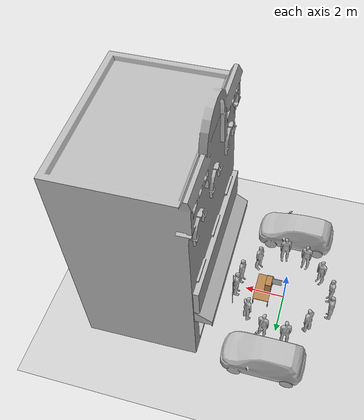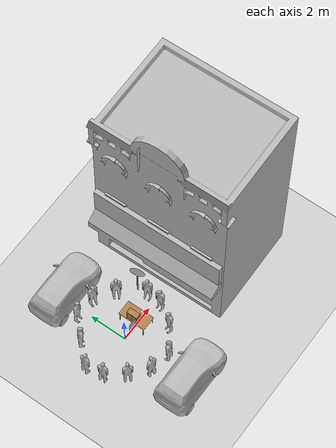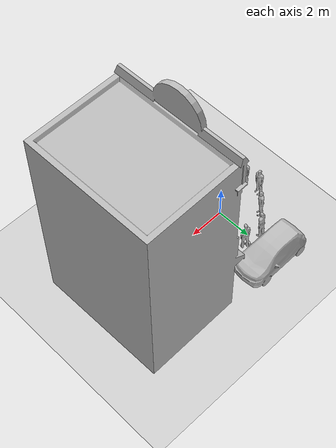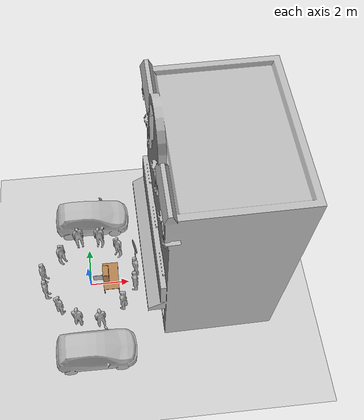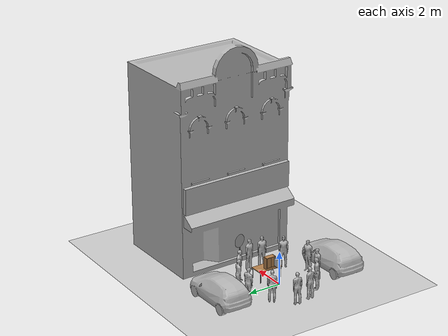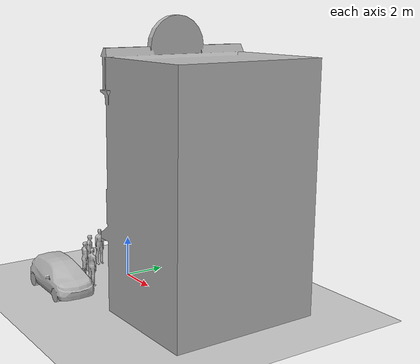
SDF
<sdf version="1.6">
 <world name="default">
  <light name="sun" type="directional">
   <pose>0 0 10 0 -0 0</pose>
   <diffuse>0.8 0.8 0.8 1</diffuse>
   <specular>0.2 0.2 0.2 1</specular>
   <attenuation>
    <range>1000</range>
    <constant>0.9</constant>
    <linear>0.01</linear>
    <quadratic>0.001</quadratic>
   </attenuation>
   <direction>-0.5 0.1 -0.9</direction>
  </light>
  <physics name="dart_2ms" default="1" type="dart">
   <max_step_size>0.002</max_step_size>
   <real_time_factor>1</real_time_factor>
   <real_time_update_rate>500</real_time_update_rate>
  </physics>
  <model name="ground_plane">
   <static>1</static>
   <link name="link">
    <collision name="collision">
     <geometry><plane><normal>0 0 1</normal><size>100 100</size></plane></geometry>
     <surface><friction><ode><mu>100</mu><mu2>50</mu2></ode></friction></surface>
    </collision>
    <visual name="visual">
     <cast_shadows>0</cast_shadows>
     <geometry><plane><normal>0 0 1</normal><size>100 100</size></plane></geometry>
     <material>
      <script><uri>file://media/materials/scripts/gazebo.material</uri><name>Gazebo/Grey</name></script>
     </material>
    </visual>
   </link>
  </model>
  <scene><ambient>0.4 0.4 0.4 1</ambient><background>0.7 0.7 0.7 1</background><shadows>1</shadows></scene>
  <audio><device>default</device></audio>
  <spherical_coordinates>
   <surface_model>EARTH_WGS84</surface_model>
   <latitude_deg>0</latitude_deg>
   <longitude_deg>0</longitude_deg>
   <elevation>0</elevation>
   <heading_deg>0</heading_deg>
  </spherical_coordinates>
  <model name="table">
   <static>1</static>
   <link name="link">
    <collision name="surface">
     <pose>0 0 1 0 -0 0</pose>
     <geometry><box><size>1.5 0.8 0.03</size></box></geometry>
     <surface><friction><ode><mu>0.6</mu><mu2>0.6</mu2></ode></friction></surface>
    </collision>
    <visual name="visual1">
     <pose>0 0 1 0 -0 0</pose>
     <geometry><box><size>1.5 0.8 0.03</size></box></geometry>
     <material>
      <script><uri>file://media/materials/scripts/gazebo.material</uri><name>Gazebo/Wood</name></script>
     </material>
    </visual>
    <collision name="front_left_leg">
     <pose>0.68 0.38 0.5 0 -0 0</pose>
     <geometry><cylinder><radius>0.02</radius><length>1</length></cylinder></geometry>
    </collision>
    <visual name="front_left_leg">
     <pose>0.68 0.38 0.5 0 -0 0</pose>
     <geometry><cylinder><radius>0.02</radius><length>1</length></cylinder></geometry>
     <material>
      <script><uri>file://media/materials/scripts/gazebo.material</uri><name>Gazebo/Grey</name></script>
     </material>
    </visual>
    <collision name="front_right_leg">
     <pose>0.68 -0.38 0.5 0 -0 0</pose>
     <geometry><cylinder><radius>0.02</radius><length>1</length></cylinder></geometry>
    </collision>
    <visual name="front_right_leg">
     <pose>0.68 -0.38 0.5 0 -0 0</pose>
     <geometry><cylinder><radius>0.02</radius><length>1</length></cylinder></geometry>
     <material>
      <script><uri>file://media/materials/scripts/gazebo.material</uri><name>Gazebo/Grey</name></script>
     </material>
    </visual>
    <collision name="back_right_leg">
     <pose>-0.68 -0.38 0.5 0 -0 0</pose>
     <geometry><cylinder><radius>0.02</radius><length>1</length></cylinder></geometry>
    </collision>
    <visual name="back_right_leg">
     <pose>-0.68 -0.38 0.5 0 -0 0</pose>
     <geometry><cylinder><radius>0.02</radius><length>1</length></cylinder></geometry>
     <material>
      <script><uri>file://media/materials/scripts/gazebo.material</uri><name>Gazebo/Grey</name></script>
     </material>
    </visual>
    <collision name="back_left_leg">
     <pose>-0.68 0.38 0.5 0 -0 0</pose>
     <geometry><cylinder><radius>0.02</radius><length>1</length></cylinder></geometry>
    </collision>
    <visual name="back_left_leg">
     <pose>-0.68 0.38 0.5 0 -0 0</pose>
     <geometry><cylinder><radius>0.02</radius><length>1</length></cylinder></geometry>
     <material>
      <script><uri>file://media/materials/scripts/gazebo.material</uri><name>Gazebo/Grey</name></script>
     </material>
    </visual>
   </link>
   <pose>1.08173 0.108165 -0.348654 0 -0 1.5708</pose>
  </model>
  <model name="cabinet_door">
   <link name="cabinet">
    <pose>0 0 0.35 0 -0 0</pose>
    <inertial>
     <mass>16</mass>
     <inertia><ixx>1.59</ixx><ixy>0</ixy><ixz>0</ixz><iyy>1.12</iyy><iyz>0</iyz><izz>0.91</izz></inertia>
    </inertial>
    <collision name="back">
     <pose>-0.14 0 0.035 0 -0 0</pose>
     <geometry><box><size>0.015 0.585 0.6</size></box></geometry>
    </collision>
    <visual name="visual1">
     <pose>-0.14 0 0.035 0 -0 0</pose>
     <geometry><box><size>0.015 0.585 0.6</size></box></geometry>
     <material>
      <script><uri>file://media/materials/scripts/gazebo.material</uri><name>Gazebo/Wood</name></script>
     </material>
    </visual>
    <collision name="left_side">
     <pose>0 -0.2925 0 0 -0 0</pose>
     <geometry><box><size>0.3 0.015 0.7</size></box></geometry>
    </collision>
    <visual name="visual2">
     <pose>0 -0.2925 0 0 -0 0</pose>
     <geometry><box><size>0.3 0.015 0.7</size></box></geometry>
     <material>
      <script><uri>file://media/materials/scripts/gazebo.material</uri><name>Gazebo/Wood</name></script>
     </material>
    </visual>
    <collision name="right_side">
     <pose>0 0.2925 0 0 -0 0</pose>
     <geometry><box><size>0.3 0.015 0.7</size></box></geometry>
    </collision>
    <visual name="visual3">
     <pose>0 0.2925 0 0 -0 0</pose>
     <geometry><box><size>0.3 0.015 0.7</size></box></geometry>
     <material>
      <script><uri>file://media/materials/scripts/gazebo.material</uri><name>Gazebo/Wood</name></script>
     </material>
    </visual>
    <collision name="bottom">
     <pose>-0.002 0 -0.2525 0 -0 0</pose>
     <geometry><box><size>0.26 0.57 0.015</size></box></geometry>
    </collision>
    <visual name="visual4">
     <pose>-0.002 0 -0.2525 0 -0 0</pose>
     <geometry><box><size>0.26 0.57 0.015</size></box></geometry>
     <material>
      <script><uri>file://media/materials/scripts/gazebo.material</uri><name>Gazebo/Wood</name></script>
     </material>
    </visual>
    <collision name="top">
     <pose>0 0 0.3425 0 -0 0</pose>
     <geometry><box><size>0.3 0.57 0.015</size></box></geometry>
    </collision>
    <visual name="visual5">
     <pose>0 0 0.3425 0 -0 0</pose>
     <geometry><box><size>0.3 0.57 0.015</size></box></geometry>
     <material>
      <script><uri>file://media/materials/scripts/gazebo.material</uri><name>Gazebo/Wood</name></script>
     </material>
    </visual>
    <collision name="middle_shelf">
     <pose>-0.002 0 0.0475 0 -0 0</pose>
     <geometry><box><size>0.26 0.57 0.015</size></box></geometry>
    </collision>
    <visual name="visual6">
     <pose>-0.002 0 0.0475 0 -0 0</pose>
     <geometry><box><size>0.26 0.57 0.015</size></box></geometry>
     <material>
      <script><uri>file://media/materials/scripts/gazebo.material</uri><name>Gazebo/Wood</name></script>
     </material>
    </visual>
    <collision name="low_front">
     <pose>0.115 0 -0.3025 0 -0 0</pose>
     <geometry><box><size>0.015 0.57 0.09</size></box></geometry>
    </collision>
    <visual name="visual7">
     <pose>0.115 0 -0.3025 0 -0 0</pose>
     <geometry><box><size>0.015 0.57 0.09</size></box></geometry>
     <material>
      <script><uri>file://media/materials/scripts/gazebo.material</uri><name>Gazebo/Wood</name></script>
     </material>
    </visual>
   </link>
   <link name="right_door">
    <pose>0.135 0.2835 0.3875 0 -0 0</pose>
    <inertial>
     <mass>1.7</mass>
     <pose>0 -0.141 0 0 -0 0</pose>
     <inertia><ixx>0.06</ixx><ixy>0</ixy><ixz>0</ixz><iyy>0.49</iyy><iyz>0</iyz><izz>0.111</izz></inertia>
    </inertial>
    <collision name="right_face">
     <pose>0 -0.141 0 0 -0 0</pose>
     <geometry><box><size>0.015 0.282 0.595</size></box></geometry>
    </collision>
    <visual name="visual8">
     <pose>0 -0.141 0 0 -0 0</pose>
     <geometry><box><size>0.015 0.282 0.595</size></box></geometry>
     <material>
      <script><uri>file://media/materials/scripts/gazebo.material</uri><name>Gazebo/Wood</name></script>
     </material>
    </visual>
    <collision name="right_handle">
     <pose>0.04304 -0.2555 0 0 -0 0</pose>
     <geometry><box><size>0.005 0.005 0.136</size></box></geometry>
    </collision>
    <visual name="visual9">
     <pose>0.04304 -0.2555 0 0 -0 0</pose>
     <geometry><box><size>0.005 0.005 0.136</size></box></geometry>
     <material>
      <script><uri>file://media/materials/scripts/gazebo.material</uri><name>Gazebo/Wood</name></script>
     </material>
    </visual>
    <collision name="right_handle_up">
     <pose>0.02475 -0.2555 0.0656 0 -0 0</pose>
     <geometry><box><size>0.04 0.005 0.005</size></box></geometry>
    </collision>
    <visual name="visual10">
     <pose>0.02475 -0.2555 0.0656 0 -0 0</pose>
     <geometry><box><size>0.04 0.005 0.005</size></box></geometry>
     <material>
      <script><uri>file://media/materials/scripts/gazebo.material</uri><name>Gazebo/Wood</name></script>
     </material>
    </visual>
    <collision name="right_handle_bo">
     <pose>0.02475 -0.2555 -0.06542 0 -0 0</pose>
     <geometry><box><size>0.04 0.005 0.005</size></box></geometry>
    </collision>
    <visual name="visual11">
     <pose>0.02475 -0.2555 -0.06542 0 -0 0</pose>
     <geometry><box><size>0.04 0.005 0.005</size></box></geometry>
     <material>
      <script><uri>file://media/materials/scripts/gazebo.material</uri><name>Gazebo/Wood</name></script>
     </material>
    </visual>
    <visual name="visual_marker_0">
     <pose>0.007 -0.07 0 1.57075 0 1.57075</pose>
     <geometry><mesh><uri>model://marker_0/meshes/marker_0.dae</uri></mesh></geometry>
    </visual>
   </link>
   <joint name="right_joint" type="revolute">
    <parent>cabinet</parent>
    <child>right_door</child>
    <axis>
     <xyz>0 0 1</xyz>
     <limit><lower>-0.001</lower><upper>1.58</upper></limit>
     <dynamics>
      <damping>0.5</damping>
      <friction>0.1</friction>
      <spring_reference>0</spring_reference>
      <spring_stiffness>0</spring_stiffness>
     </dynamics>
     <use_parent_model_frame>1</use_parent_model_frame>
    </axis>
   </joint>
   <link name="left_door">
    <pose>0.135 -0.2835 0.3875 0 -0 0</pose>
    <inertial>
     <mass>1</mass>
     <pose>0 0.141 0 0 -0 0</pose>
     <inertia><ixx>0.06</ixx><ixy>0</ixy><ixz>0</ixz><iyy>0.49</iyy><iyz>0</iyz><izz>0.111</izz></inertia>
    </inertial>
    <collision name="left_face">
     <pose>0 0.141 0 0 -0 0</pose>
     <geometry><box><size>0.015 0.282 0.595</size></box></geometry>
    </collision>
    <visual name="visual12">
     <pose>0 0.141 0 0 -0 0</pose>
     <geometry><box><size>0.015 0.282 0.595</size></box></geometry>
     <material>
      <script><uri>file://media/materials/scripts/gazebo.material</uri><name>Gazebo/Wood</name></script>
     </material>
    </visual>
    <collision name="left_handle">
     <pose>0.04304 0.2555 0 0 -0 0</pose>
     <geometry><box><size>0.005 0.005 0.136</size></box></geometry>
    </collision>
    <visual name="visual13">
     <pose>0.04304 0.2555 0 0 -0 0</pose>
     <geometry><box><size>0.005 0.005 0.136</size></box></geometry>
     <material>
      <script><uri>file://media/materials/scripts/gazebo.material</uri><name>Gazebo/Wood</name></script>
     </material>
    </visual>
    <collision name="left_handle_up">
     <pose>0.02475 0.2555 0.0656 0 -0 0</pose>
     <geometry><box><size>0.04 0.005 0.005</size></box></geometry>
    </collision>
    <visual name="visual14">
     <pose>0.02475 0.2555 0.0656 0 -0 0</pose>
     <geometry><box><size>0.04 0.005 0.005</size></box></geometry>
     <material>
      <script><uri>file://media/materials/scripts/gazebo.material</uri><name>Gazebo/Wood</name></script>
     </material>
    </visual>
    <collision name="left_handle_bo">
     <pose>0.02475 0.2555 -0.06542 0 -0 0</pose>
     <geometry><box><size>0.04 0.005 0.005</size></box></geometry>
    </collision>
    <visual name="visual15">
     <pose>0.02475 0.2555 -0.06542 0 -0 0</pose>
     <geometry><box><size>0.04 0.005 0.005</size></box></geometry>
     <material>
      <script><uri>file://media/materials/scripts/gazebo.material</uri><name>Gazebo/Wood</name></script>
     </material>
    </visual>
   </link>
   <joint name="left_joint" type="revolute">
    <parent>cabinet</parent>
    <child>left_door</child>
    <axis>
     <xyz>0 0 1</xyz>
     <limit><lower>-1.58</lower><upper>0.001</upper></limit>
     <dynamics>
      <damping>0.5</damping>
      <friction>0.1</friction>
      <spring_reference>0</spring_reference>
      <spring_stiffness>0</spring_stiffness>
     </dynamics>
     <use_parent_model_frame>1</use_parent_model_frame>
    </axis>
   </joint>
   <pose>0.843653 0.084566 0.700651 0 -0 3.14014</pose>
  </model>
  <gravity>0 0 -9.8</gravity>
  <magnetic_field>6e-06 2.3e-05 -4.2e-05</magnetic_field>
  <atmosphere type="adiabatic"/>
  <model name="hatchback">
   <static>1</static>
   <link name="link">
    <collision name="collision">
     <pose>0 0 0 0 -0 1.5708</pose>
     <geometry>
      <mesh><scale>0.0254 0.0254 0.0254</scale><uri>model://hatchback/meshes/hatchback.obj</uri></mesh>
     </geometry>
    </collision>
    <visual name="visual">
     <pose>0 0 0 0 -0 1.5708</pose>
     <geometry>
      <mesh><scale>0.0254 0.0254 0.0254</scale><uri>model://hatchback/meshes/hatchback.obj</uri></mesh>
     </geometry>
    </visual>
   </link>
   <pose>-0.219734 -3.77431 0 0 -0 0</pose>
  </model>
  <model name="hatchback_red">
   <static>1</static>
   <link name="link">
    <collision name="collision">
     <pose>0 0 0 0 -0 1.5708</pose>
     <geometry>
      <mesh><scale>0.0254 0.0254 0.0254</scale><uri>model://hatchback_red/meshes/hatchback.obj</uri></mesh>
     </geometry>
    </collision>
    <visual name="visual">
     <pose>0 0 0 0 -0 1.5708</pose>
     <geometry>
      <mesh><scale>0.0254 0.0254 0.0254</scale><uri>model://hatchback_red/meshes/hatchback.obj</uri></mesh>
     </geometry>
    </visual>
   </link>
   <pose>-0.070308 3.74754 0 0 -0 0</pose>
  </model>
  <model name="person_standing">
   <link name="link">
    <inertial>
     <pose>0 -0.1 0.95 0 -0 0</pose>
     <mass>80</mass>
     <inertia><ixx>24.88</ixx><ixy>0</ixy><ixz>0</ixz><iyy>25.73</iyy><iyz>0</iyz><izz>2.48</izz></inertia>
    </inertial>
    <collision name="bottom">
     <pose>0 -0.1 0.01 0 -0 0</pose>
     <geometry><box><size>0.5 0.35 0.02</size></box></geometry>
    </collision>
    <collision name="person">
     <pose>0 0 0.02 0.04 -0 0</pose>
     <geometry><mesh><uri>model://person_standing/meshes/standing.dae</uri></mesh></geometry>
    </collision>
    <visual name="visual">
     <pose>0 0 0.02 0.04 -0 0</pose>
     <geometry><mesh><uri>model://person_standing/meshes/standing.dae</uri></mesh></geometry>
    </visual>
   </link>
   <pose>1.62155 1.70026 0 0 0 -0.850795</pose>
  </model>
  <model name="person_standing_0">
   <link name="link">
    <inertial>
     <pose>0 -0.1 0.95 0 -0 0</pose>
     <mass>80</mass>
     <inertia><ixx>24.88</ixx><ixy>0</ixy><ixz>0</ixz><iyy>25.73</iyy><iyz>0</iyz><izz>2.48</izz></inertia>
    </inertial>
    <collision name="bottom">
     <pose>0 -0.1 0.01 0 -0 0</pose>
     <geometry><box><size>0.5 0.35 0.02</size></box></geometry>
    </collision>
    <collision name="person">
     <pose>0 0 0.02 0.04 -0 0</pose>
     <geometry><mesh><uri>model://person_standing/meshes/standing.dae</uri></mesh></geometry>
    </collision>
    <visual name="visual">
     <pose>0 0 0.02 0.04 -0 0</pose>
     <geometry><mesh><uri>model://person_standing/meshes/standing.dae</uri></mesh></geometry>
    </visual>
   </link>
   <pose>1.71021 -1.46564 0 0 0 -2.05266</pose>
  </model>
  <model name="Speed limit">
   <static>1</static>
   <link name="link">
    <collision name="collision">
     <geometry>
      <mesh><scale>10 10 10</scale><uri>model://speed_limit_sign/meshes/speed_limit_sign.dae</uri></mesh>
     </geometry>
    </collision>
    <visual name="visual">
     <geometry>
      <mesh><scale>10 10 10</scale><uri>model://speed_limit_sign/meshes/speed_limit_sign.dae</uri></mesh>
     </geometry>
    </visual>
   </link>
   <pose>2.43221 1.02348 0 0 -0 1.83166</pose>
  </model>
  <model name="thrift_shop">
   <static>1</static>
   <link name="link">
    <collision name="collision">
     <pose>0 0 5.69469 0 -0 0</pose>
     <geometry><box><size>7.21297 5.43165 11.3894</size></box></geometry>
    </collision>
    <visual name="visual">
     <pose>0 -0.912491 0 0 -0 0</pose>
     <geometry><mesh><uri>model://thrift_shop/meshes/thrift_shop.dae</uri></mesh></geometry>
    </visual>
   </link>
   <pose>6.24604 0.598652 0 0 0 -1.55334</pose>
  </model>
  <model name="person_standing_clone">
   <link name="link">
    <inertial>
     <pose>0 -0.1 0.95 0 -0 0</pose>
     <mass>80</mass>
     <inertia><ixx>24.88</ixx><ixy>0</ixy><ixz>0</ixz><iyy>25.73</iyy><iyz>0</iyz><izz>2.48</izz></inertia>
    </inertial>
    <collision name="bottom">
     <pose>0 -0.1 0.01 0 -0 0</pose>
     <geometry><box><size>0.5 0.35 0.02</size></box></geometry>
    </collision>
    <collision name="person">
     <pose>0 0 0.02 0.04 -0 0</pose>
     <geometry><mesh><uri>model://person_standing/meshes/standing.dae</uri></mesh></geometry>
    </collision>
    <visual name="visual">
     <pose>0 0 0.02 0.04 -0 0</pose>
     <geometry><mesh><uri>model://person_standing/meshes/standing.dae</uri></mesh></geometry>
    </visual>
   </link>
   <pose>0.455798 -2.35956 0 0 0 -2.93846</pose>
  </model>
  <model name="person_standing_clone_0">
   <link name="link">
    <inertial>
     <pose>0 -0.1 0.95 0 -0 0</pose>
     <mass>80</mass>
     <inertia><ixx>24.88</ixx><ixy>0</ixy><ixz>0</ixz><iyy>25.73</iyy><iyz>0</iyz><izz>2.48</izz></inertia>
    </inertial>
    <collision name="bottom">
     <pose>0 -0.1 0.01 0 -0 0</pose>
     <geometry><box><size>0.5 0.35 0.02</size></box></geometry>
    </collision>
    <collision name="person">
     <pose>0 0 0.02 0.04 -0 0</pose>
     <geometry><mesh><uri>model://person_standing/meshes/standing.dae</uri></mesh></geometry>
    </collision>
    <visual name="visual">
     <pose>0 0 0.02 0.04 -0 0</pose>
     <geometry><mesh><uri>model://person_standing/meshes/standing.dae</uri></mesh></geometry>
    </visual>
   </link>
   <pose>-0.726382 -2.1759 0 0 -0 2.83446</pose>
  </model>
  <model name="person_standing_clone_1">
   <link name="link">
    <inertial>
     <pose>0 -0.1 0.95 0 -0 0</pose>
     <mass>80</mass>
     <inertia><ixx>24.88</ixx><ixy>0</ixy><ixz>0</ixz><iyy>25.73</iyy><iyz>0</iyz><izz>2.48</izz></inertia>
    </inertial>
    <collision name="bottom">
     <pose>0 -0.1 0.01 0 -0 0</pose>
     <geometry><box><size>0.5 0.35 0.02</size></box></geometry>
    </collision>
    <collision name="person">
     <pose>0 0 0.02 0.04 -0 0</pose>
     <geometry><mesh><uri>model://person_standing/meshes/standing.dae</uri></mesh></geometry>
    </collision>
    <visual name="visual">
     <pose>0 0 0.02 0.04 -0 0</pose>
     <geometry><mesh><uri>model://person_standing/meshes/standing.dae</uri></mesh></geometry>
    </visual>
   </link>
   <pose>-1.66754 -1.44087 0 0 -0 2.3809</pose>
  </model>
  <model name="person_standing_clone_2">
   <link name="link">
    <inertial>
     <pose>0 -0.1 0.95 0 -0 0</pose>
     <mass>80</mass>
     <inertia><ixx>24.88</ixx><ixy>0</ixy><ixz>0</ixz><iyy>25.73</iyy><iyz>0</iyz><izz>2.48</izz></inertia>
    </inertial>
    <collision name="bottom">
     <pose>0 -0.1 0.01 0 -0 0</pose>
     <geometry><box><size>0.5 0.35 0.02</size></box></geometry>
    </collision>
    <collision name="person">
     <pose>0 0 0.02 0.04 -0 0</pose>
     <geometry><mesh><uri>model://person_standing/meshes/standing.dae</uri></mesh></geometry>
    </collision>
    <visual name="visual">
     <pose>0 0 0.02 0.04 -0 0</pose>
     <geometry><mesh><uri>model://person_standing/meshes/standing.dae</uri></mesh></geometry>
    </visual>
   </link>
   <pose>-2.36647 -0.443194 0 0 -0 1.66461</pose>
  </model>
  <model name="person_standing_clone_2_clone">
   <link name="link">
    <inertial>
     <pose>0 -0.1 0.95 0 -0 0</pose>
     <mass>80</mass>
     <inertia><ixx>24.88</ixx><ixy>0</ixy><ixz>0</ixz><iyy>25.73</iyy><iyz>0</iyz><izz>2.48</izz></inertia>
    </inertial>
    <collision name="bottom">
     <pose>0 -0.1 0.01 0 -0 0</pose>
     <geometry><box><size>0.5 0.35 0.02</size></box></geometry>
    </collision>
    <collision name="person">
     <pose>0 0 0.02 0.04 -0 0</pose>
     <geometry><mesh><uri>model://person_standing/meshes/standing.dae</uri></mesh></geometry>
    </collision>
    <visual name="visual">
     <pose>0 0 0.02 0.04 -0 0</pose>
     <geometry><mesh><uri>model://person_standing/meshes/standing.dae</uri></mesh></geometry>
    </visual>
   </link>
   <pose>-2.48908 0.520789 0 0 -0 1.38056</pose>
  </model>
  <model name="person_standing_clone_2_clone_0">
   <link name="link">
    <inertial>
     <pose>0 -0.1 0.95 0 -0 0</pose>
     <mass>80</mass>
     <inertia><ixx>24.88</ixx><ixy>0</ixy><ixz>0</ixz><iyy>25.73</iyy><iyz>0</iyz><izz>2.48</izz></inertia>
    </inertial>
    <collision name="bottom">
     <pose>0 -0.1 0.01 0 -0 0</pose>
     <geometry><box><size>0.5 0.35 0.02</size></box></geometry>
    </collision>
    <collision name="person">
     <pose>0 0 0.02 0.04 -0 0</pose>
     <geometry><mesh><uri>model://person_standing/meshes/standing.dae</uri></mesh></geometry>
    </collision>
    <visual name="visual">
     <pose>0 0 0.02 0.04 -0 0</pose>
     <geometry><mesh><uri>model://person_standing/meshes/standing.dae</uri></mesh></geometry>
    </visual>
   </link>
   <pose>-1.51006 1.56052 0 0 -0 0.857948</pose>
  </model>
  <model name="person_standing_clone_2_clone_1">
   <link name="link">
    <inertial>
     <pose>0 -0.1 0.95 0 -0 0</pose>
     <mass>80</mass>
     <inertia><ixx>24.88</ixx><ixy>0</ixy><ixz>0</ixz><iyy>25.73</iyy><iyz>0</iyz><izz>2.48</izz></inertia>
    </inertial>
    <collision name="bottom">
     <pose>0 -0.1 0.01 0 -0 0</pose>
     <geometry><box><size>0.5 0.35 0.02</size></box></geometry>
    </collision>
    <collision name="person">
     <pose>0 0 0.02 0.04 -0 0</pose>
     <geometry><mesh><uri>model://person_standing/meshes/standing.dae</uri></mesh></geometry>
    </collision>
    <visual name="visual">
     <pose>0 0 0.02 0.04 -0 0</pose>
     <geometry><mesh><uri>model://person_standing/meshes/standing.dae</uri></mesh></geometry>
    </visual>
   </link>
   <pose>-0.512795 2.501 0 0 -0 0.183602</pose>
  </model>
  <model name="person_standing_clone_2_clone_2">
   <link name="link">
    <inertial>
     <pose>0 -0.1 0.95 0 -0 0</pose>
     <mass>80</mass>
     <inertia><ixx>24.88</ixx><ixy>0</ixy><ixz>0</ixz><iyy>25.73</iyy><iyz>0</iyz><izz>2.48</izz></inertia>
    </inertial>
    <collision name="bottom">
     <pose>0 -0.1 0.01 0 -0 0</pose>
     <geometry><box><size>0.5 0.35 0.02</size></box></geometry>
    </collision>
    <collision name="person">
     <pose>0 0 0.02 0.04 -0 0</pose>
     <geometry><mesh><uri>model://person_standing/meshes/standing.dae</uri></mesh></geometry>
    </collision>
    <visual name="visual">
     <pose>0 0 0.02 0.04 -0 0</pose>
     <geometry><mesh><uri>model://person_standing/meshes/standing.dae</uri></mesh></geometry>
    </visual>
   </link>
   <pose>0.640032 2.4107 0 0 0 -0.347428</pose>
  </model>
  <model name="person_standing_clone_2_clone_3">
   <link name="link">
    <inertial>
     <pose>0 -0.1 0.95 0 -0 0</pose>
     <mass>80</mass>
     <inertia><ixx>24.88</ixx><ixy>0</ixy><ixz>0</ixz><iyy>25.73</iyy><iyz>0</iyz><izz>2.48</izz></inertia>
    </inertial>
    <collision name="bottom">
     <pose>0 -0.1 0.01 0 -0 0</pose>
     <geometry><box><size>0.5 0.35 0.02</size></box></geometry>
    </collision>
    <collision name="person">
     <pose>0 0 0.02 0.04 -0 0</pose>
     <geometry><mesh><uri>model://person_standing/meshes/standing.dae</uri></mesh></geometry>
    </collision>
    <visual name="visual">
     <pose>0 0 0.02 0.04 -0 0</pose>
     <geometry><mesh><uri>model://person_standing/meshes/standing.dae</uri></mesh></geometry>
    </visual>
   </link>
   <pose>2.48651 0.420098 0 0 0 -1.41165</pose>
  </model>
  <model name="person_standing_clone_2_clone_4">
   <link name="link">
    <inertial>
     <pose>0 -0.1 0.95 0 -0 0</pose>
     <mass>80</mass>
     <inertia><ixx>24.88</ixx><ixy>0</ixy><ixz>0</ixz><iyy>25.73</iyy><iyz>0</iyz><izz>2.48</izz></inertia>
    </inertial>
    <collision name="bottom">
     <pose>0 -0.1 0.01 0 -0 0</pose>
     <geometry><box><size>0.5 0.35 0.02</size></box></geometry>
    </collision>
    <collision name="person">
     <pose>0 0 0.02 0.04 -0 0</pose>
     <geometry><mesh><uri>model://person_standing/meshes/standing.dae</uri></mesh></geometry>
    </collision>
    <visual name="visual">
     <pose>0 0 0.02 0.04 -0 0</pose>
     <geometry><mesh><uri>model://person_standing/meshes/standing.dae</uri></mesh></geometry>
    </visual>
   </link>
   <pose>2.40745 -0.421886 0 0 0 -1.76957</pose>
  </model>
 </world>
</sdf>
